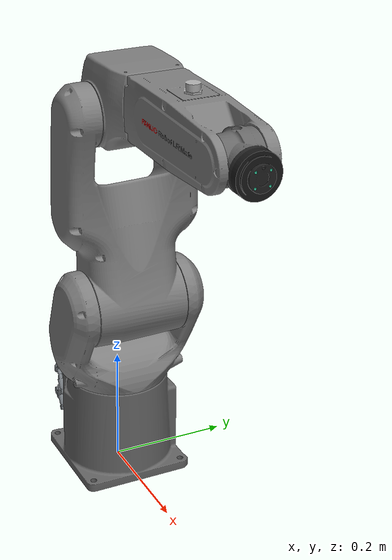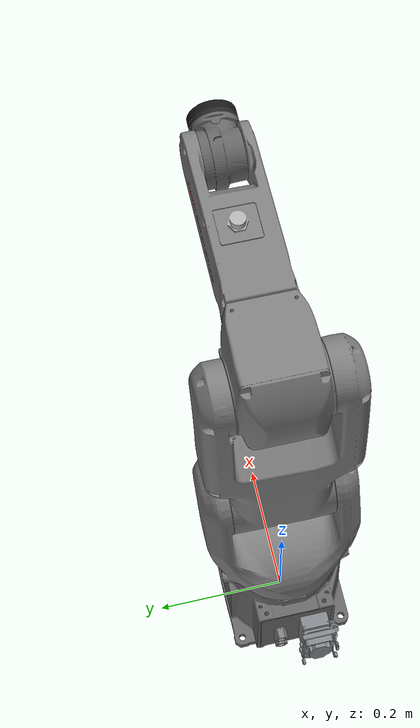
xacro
<?xml version="1.0" ?>
<robot name="lrmate200id7we" xmlns:xacro="http://wiki.ros.org/xacro">
  <xacro:include
    filename="$(find fanuc_lrmate_description)/urdf/lrmate200id7we_urdf_macro.xacro"
  />

  <link name="world" />
  <link name="ee_link" />
  <xacro:lrmate200id7we parent="world" child="ee_link">
    <origin xyz="0 0 0" rpy="0 0 0" />
  </xacro:lrmate200id7we>
</robot>

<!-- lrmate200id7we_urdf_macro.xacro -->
<!--
SPDX-FileCopyrightText: 2026, FANUC America Corporation
SPDX-FileCopyrightText: 2026, FANUC CORPORATION
SPDX-License-Identifier: Apache-2.0
-->
<!-- URDF for LR Mate/7-7D Wash (LR Mate 200iD/7WE) -->
<robot xmlns:xacro="http://wiki.ros.org/xacro">
  <xacro:macro
    name="lrmate200id7we"
    params="prefix=''
            parent
            *origin
            child"
  >

    <xacro:property name="j1_lower_limit" value="${radians(-180)}" />
    <xacro:property name="j2_lower_limit" value="${radians(-100)}" />
    <xacro:property name="j3_lower_limit" value="${radians(-70)}" />
    <xacro:property name="j4_lower_limit" value="${radians(-190)}" />
    <xacro:property name="j5_lower_limit" value="${radians(-125)}" />
    <xacro:property name="j6_lower_limit" value="${radians(-360)}" />

    <xacro:property name="j1_upper_limit" value="${radians(180)}" />
    <xacro:property name="j2_upper_limit" value="${radians(145)}" />
    <xacro:property name="j3_upper_limit" value="${radians(205)}" />
    <xacro:property name="j4_upper_limit" value="${radians(190)}" />
    <xacro:property name="j5_upper_limit" value="${radians(125)}" />
    <xacro:property name="j6_upper_limit" value="${radians(360)}" />

    <xacro:property name="j1_effort_limit" value="500" />
    <xacro:property name="j2_effort_limit" value="500" />
    <xacro:property name="j3_effort_limit" value="300" />
    <xacro:property name="j4_effort_limit" value="70" />
    <xacro:property name="j5_effort_limit" value="40" />
    <xacro:property name="j6_effort_limit" value="20" />

    <xacro:property name="j1_velocity_limit" value="${radians(450)}" />
    <xacro:property name="j2_velocity_limit" value="${radians(380)}" />
    <xacro:property name="j3_velocity_limit" value="${radians(410)}" />
    <xacro:property name="j4_velocity_limit" value="${radians(550)}" />
    <xacro:property name="j5_velocity_limit" value="${radians(545)}" />
    <xacro:property name="j6_velocity_limit" value="${radians(1000)}" />

    <!-- links -->
    <link name="${prefix}base_link">
      <visual>
        <origin xyz="0 0 0" rpy="0 0 0" />
        <geometry>
          <mesh
            filename="package://fanuc_lrmate_description/meshes/lrmate200id7we/visual/base.dae"
          />
        </geometry>
      </visual>
      <collision>
        <origin xyz="0 0 0" rpy="0 0 0" />
        <geometry>
          <mesh
            filename="package://fanuc_lrmate_description/meshes/lrmate200id7we/collision/base.stl"
          />
        </geometry>
      </collision>
      <inertial>
        <mass value=" 5.89" />
        <origin xyz="-.019 -.000897  .0796" />
        <inertia
          ixx=" .0275"
          ixy="-.000994"
          ixz=" .000302"
          iyy=" .0361"
          iyz="-.00012"
          izz=" .0379"
        />
      </inertial>
    </link>

    <link name="${prefix}J1_link">
      <visual>
        <origin xyz="0 0 0" rpy="0 0 0" />
        <geometry>
          <mesh
            filename="package://fanuc_lrmate_description/meshes/lrmate200id7we/visual/j1.dae"
          />
        </geometry>
      </visual>
      <collision>
        <origin xyz="0 0 0" rpy="0 0 0" />
        <geometry>
          <mesh
            filename="package://fanuc_lrmate_description/meshes/lrmate200id7we/collision/j1.stl"
          />
        </geometry>
      </collision>
      <inertial>
        <mass value=" 6.03" />
        <origin xyz=" .0287  .000102 -.0547" />
        <inertia
          ixx=" .0447"
          ixy=" .0000255"
          ixz="-.00591"
          iyy=" .0325"
          iyz=" .00013"
          izz=" .0345"
        />
      </inertial>
    </link>

    <link name="${prefix}J2_link">
      <visual>
        <origin xyz="0 0 0" rpy="0 0 0" />
        <geometry>
          <mesh
            filename="package://fanuc_lrmate_description/meshes/lrmate200id7we/visual/j2.dae"
          />
        </geometry>
      </visual>
      <collision>
        <origin xyz="0 0 0" rpy="0 0 0" />
        <geometry>
          <mesh
            filename="package://fanuc_lrmate_description/meshes/lrmate200id7we/collision/j2.stl"
          />
        </geometry>
      </collision>
      <inertial>
        <mass value=" 9.69" />
        <origin xyz="-.00271 -.000976  .159" />
        <inertia
          ixx=" .17"
          ixy=" .0000359"
          ixz=" .000165"
          iyy=" .146"
          iyz="-.00116"
          izz=" .0459"
        />
      </inertial>
    </link>

    <link name="${prefix}J3_link">
      <visual>
        <origin xyz="0 0 0" rpy="0 0 0" />
        <geometry>
          <mesh
            filename="package://fanuc_lrmate_description/meshes/lrmate200id7we/visual/j3.dae"
          />
        </geometry>
      </visual>
      <collision>
        <origin xyz="0 0 0" rpy="0 0 0" />
        <geometry>
          <mesh
            filename="package://fanuc_lrmate_description/meshes/lrmate200id7we/collision/j3.stl"
          />
        </geometry>
      </collision>
      <inertial>
        <mass value=" 2.31" />
        <origin xyz=" .00887 -.0000626  .0171" />
        <inertia
          ixx=" .00626"
          ixy="-.0000492"
          ixz="-.000666"
          iyy=" .00713"
          iyz="-.0000493"
          izz=" .00717"
        />
      </inertial>
    </link>

    <link name="${prefix}J4_link">
      <visual>
        <origin xyz="0 0 0" rpy="0 0 0" />
        <geometry>
          <mesh
            filename="package://fanuc_lrmate_description/meshes/lrmate200id7we/visual/j4.dae"
          />
        </geometry>
      </visual>
      <collision>
        <origin xyz="0 0 0" rpy="0 0 0" />
        <geometry>
          <mesh
            filename="package://fanuc_lrmate_description/meshes/lrmate200id7we/collision/j4.stl"
          />
        </geometry>
      </collision>
      <inertial>
        <mass value=" 2.59" />
        <origin xyz=" .223  .00356  .00215" />
        <inertia
          ixx=" .00423"
          ixy=" .000000279"
          ixz=" .0000776"
          iyy=" .0183"
          iyz="-.0000101"
          izz=" .0183"
        />
      </inertial>
    </link>

    <link name="${prefix}J5_link">
      <visual>
        <origin xyz="0 0 0" rpy="0 0 0" />
        <geometry>
          <mesh
            filename="package://fanuc_lrmate_description/meshes/lrmate200id7we/visual/j5.dae"
          />
        </geometry>
      </visual>
      <collision>
        <origin xyz="0 0 0" rpy="0 0 0" />
        <geometry>
          <mesh
            filename="package://fanuc_lrmate_description/meshes/lrmate200id7we/collision/j5.stl"
          />
        </geometry>
      </collision>
      <inertial>
        <mass value=" .477" />
        <origin xyz=" .0177  .0025 -.00000419" />
        <inertia
          ixx=" .000363"
          ixy=" .00002"
          ixz="-.0000000224"
          iyy=" .000644"
          iyz="-.0000000184"
          izz=" .000603"
        />
      </inertial>
    </link>

    <link name="${prefix}J6_link">
      <visual>
        <origin xyz="0 0 0" rpy="0 0 0" />
        <geometry>
          <mesh
            filename="package://fanuc_lrmate_description/meshes/lrmate200id7we/visual/j6.dae"
          />
        </geometry>
      </visual>
      <collision>
        <origin xyz="0 0 0" rpy="0 0 0" />
        <geometry>
          <mesh
            filename="package://fanuc_lrmate_description/meshes/lrmate200id7we/collision/j6.stl"
          />
        </geometry>
      </collision>
      <inertial>
        <mass value=" .0144" />
        <origin xyz=" .074  2.26E-18  3.35E-18" />
        <inertia
          ixx=" .00000295"
          ixy=" 5.39E-21"
          ixz=" 2.91E-21"
          iyy=" .00000164"
          iyz="-1.17E-22"
          izz=" .00000164"
        />
      </inertial>
    </link>

    <!-- joints -->
    <joint name="${prefix}J1" type="revolute">
      <origin xyz=" 0  0  .33" rpy="0 0 0" />
      <parent link="${prefix}base_link" />
      <child link="${prefix}J1_link" />
      <axis xyz=" 0  0  1" />
      <limit
        lower="${j1_lower_limit}"
        upper="${j1_upper_limit}"
        effort="${j1_effort_limit}"
        velocity="${j1_velocity_limit}"
      />
    </joint>

    <joint name="${prefix}J2" type="revolute">
      <origin xyz=" .05  0  0" rpy="0 0 0" />
      <parent link="${prefix}J1_link" />
      <child link="${prefix}J2_link" />
      <axis xyz=" 0  1  0" />
      <limit
        lower="${j2_lower_limit}"
        upper="${j2_upper_limit}"
        effort="${j2_effort_limit}"
        velocity="${j2_velocity_limit}"
      />
    </joint>

    <joint name="${prefix}J3" type="revolute">
      <origin xyz=" 0  0  .33" rpy="0 0 0" />
      <parent link="${prefix}J2_link" />
      <child link="${prefix}J3_link" />
      <axis xyz=" 0 -1  0" />
      <limit
        lower="${j3_lower_limit}"
        upper="${j3_upper_limit}"
        effort="${j3_effort_limit}"
        velocity="${j3_velocity_limit}"
      />
    </joint>

    <joint name="${prefix}J4" type="revolute">
      <origin xyz=" 0  0  .035" rpy="0 0 0" />
      <parent link="${prefix}J3_link" />
      <child link="${prefix}J4_link" />
      <axis xyz="-1  0  0" />
      <limit
        lower="${j4_lower_limit}"
        upper="${j4_upper_limit}"
        effort="${j4_effort_limit}"
        velocity="${j4_velocity_limit}"
      />
    </joint>

    <joint name="${prefix}J5" type="revolute">
      <origin xyz=" .335  0  0" rpy="0 0 0" />
      <parent link="${prefix}J4_link" />
      <child link="${prefix}J5_link" />
      <axis xyz=" 0 -1  0" />
      <limit
        lower="${j5_lower_limit}"
        upper="${j5_upper_limit}"
        effort="${j5_effort_limit}"
        velocity="${j5_velocity_limit}"
      />
    </joint>

    <joint name="${prefix}J6" type="revolute">
      <origin xyz=" 0  0  0" rpy="0 0 0" />
      <parent link="${prefix}J5_link" />
      <child link="${prefix}J6_link" />
      <axis xyz="-1  0  0" />
      <limit
        lower="${j6_lower_limit}"
        upper="${j6_upper_limit}"
        effort="${j6_effort_limit}"
        velocity="${j6_velocity_limit}"
      />
    </joint>

    <!-- world coords -->
    <link name="${prefix}wbase" />
    <joint name="${prefix}base_link-wbase" type="fixed">
      <origin xyz=" 0  0  .33" rpy="0 0 0" />
      <parent link="${prefix}base_link" />
      <child link="${prefix}wbase" />
    </joint>

    <!-- flange coords -->
    <link name="${prefix}flange" />
    <joint name="${prefix}J6-flange" type="fixed">
      <origin xyz=" .08  0  0" rpy="0 0 0" />
      <parent link="${prefix}J6_link" />
      <child link="${prefix}flange" />
    </joint>

    <!-- FANUC flange coords -->
    <link name="${prefix}fanuc_flange" />
    <joint name="${prefix}flange-fanuc_flange" type="fixed">
      <origin xyz="0 0 0" rpy="${radians( 180)} ${radians(-90)} ${radians( 0)}" />
      <parent link="${prefix}flange" />
      <child link="${prefix}fanuc_flange" />
    </joint>

    <!-- Attach to parent -->
    <joint name="${prefix}base_joint" type="fixed">
      <xacro:insert_block name="origin" />
      <parent link="${parent}" />
      <child link="${prefix}base_link" />
    </joint>

    <!-- Attach child -->
    <joint name="${prefix}child_joint" type="fixed">
      <origin xyz="0 0 0" rpy="0 0 0" />
      <parent link="${prefix}flange" />
      <child link="${child}" />
    </joint>
  </xacro:macro>
</robot>
